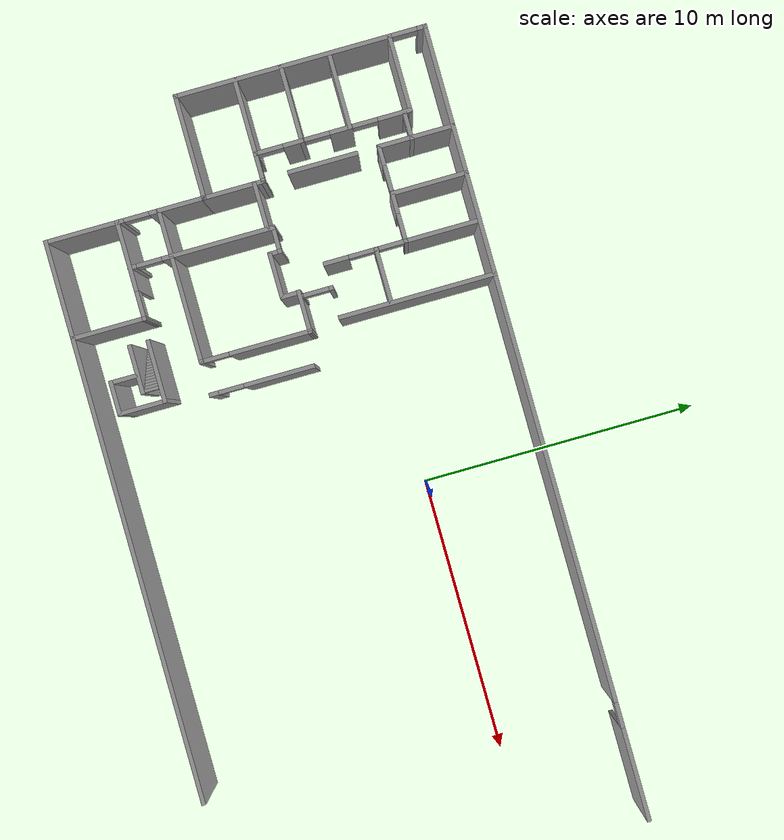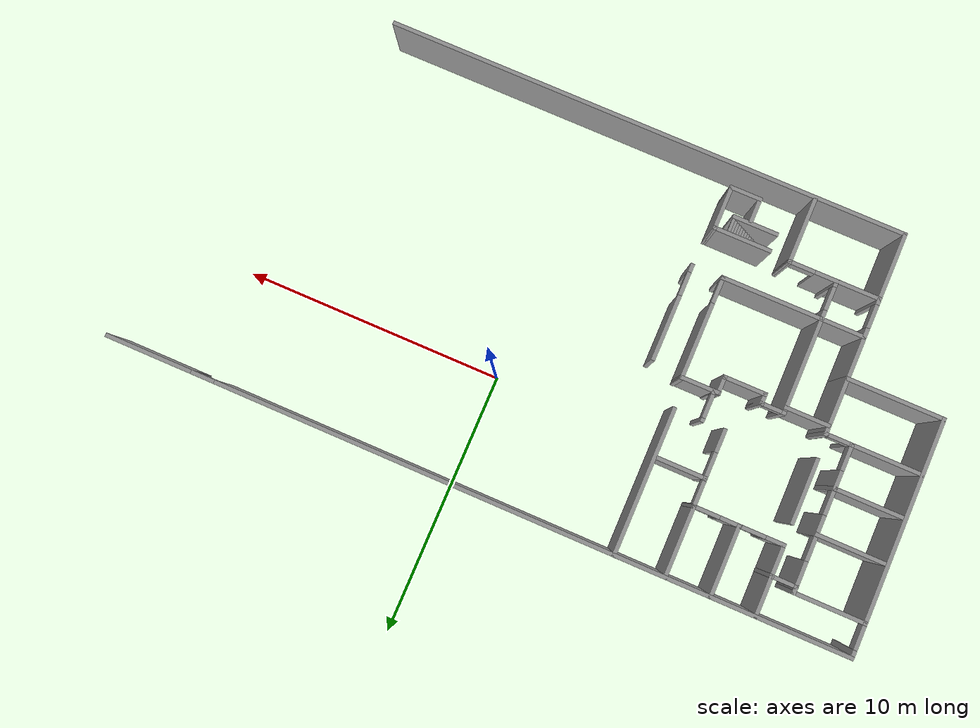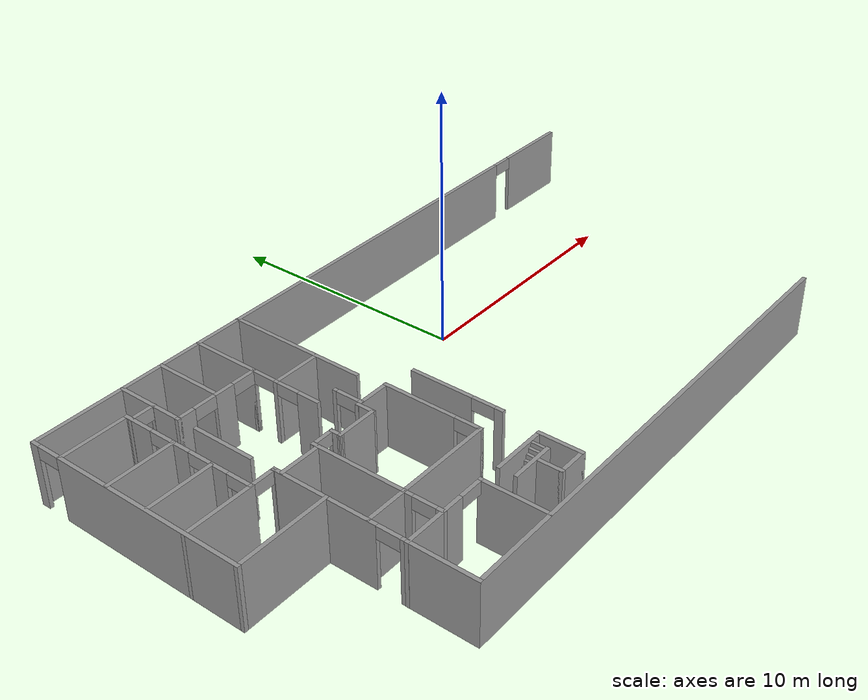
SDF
<sdf version="1.6">
 <model name="deh_f1">
  <pose>-0.995568 -3.05257 0 0 -0 0</pose>
  <link name="Stairs_0">
   <visual name="Stairs_0_Visual_0">
    <pose>-6.2314 -5.10974 0.083333 0 -0 1.5708</pose>
    <geometry><box><size>0.49 0.113139 0.166667</size></box></geometry>
    <material>
     <script><uri>file://media/materials/scripts/gazebo.material</uri><name>Gazebo/Grey</name></script>
     <ambient>1 1 1 1</ambient>
    </material>
   </visual>
   <collision name="Stairs_0_Collision_0">
    <geometry><box><size>0.49 0.113139 0.166667</size></box></geometry>
    <pose>-6.2314 -5.10974 0.083333 0 -0 1.5708</pose>
   </collision>
   <visual name="Stairs_0_Visual_1">
    <pose>-6.11826 -5.10974 0.25 0 -0 1.5708</pose>
    <geometry><box><size>0.49 0.113139 0.166667</size></box></geometry>
    <material>
     <script><uri>file://media/materials/scripts/gazebo.material</uri><name>Gazebo/Grey</name></script>
     <ambient>1 1 1 1</ambient>
    </material>
   </visual>
   <collision name="Stairs_0_Collision_1">
    <geometry><box><size>0.49 0.113139 0.166667</size></box></geometry>
    <pose>-6.11826 -5.10974 0.25 0 -0 1.5708</pose>
   </collision>
   <visual name="Stairs_0_Visual_2">
    <pose>-6.00512 -5.10974 0.416667 0 -0 1.5708</pose>
    <geometry><box><size>0.49 0.113139 0.166667</size></box></geometry>
    <material>
     <script><uri>file://media/materials/scripts/gazebo.material</uri><name>Gazebo/Grey</name></script>
     <ambient>1 1 1 1</ambient>
    </material>
   </visual>
   <collision name="Stairs_0_Collision_2">
    <geometry><box><size>0.49 0.113139 0.166667</size></box></geometry>
    <pose>-6.00512 -5.10974 0.416667 0 -0 1.5708</pose>
   </collision>
   <visual name="Stairs_0_Visual_3">
    <pose>-5.89198 -5.10974 0.583333 0 -0 1.5708</pose>
    <geometry><box><size>0.49 0.113139 0.166667</size></box></geometry>
    <material>
     <script><uri>file://media/materials/scripts/gazebo.material</uri><name>Gazebo/Grey</name></script>
     <ambient>1 1 1 1</ambient>
    </material>
   </visual>
   <collision name="Stairs_0_Collision_3">
    <geometry><box><size>0.49 0.113139 0.166667</size></box></geometry>
    <pose>-5.89198 -5.10974 0.583333 0 -0 1.5708</pose>
   </collision>
   <visual name="Stairs_0_Visual_4">
    <pose>-5.77884 -5.10974 0.75 0 -0 1.5708</pose>
    <geometry><box><size>0.49 0.113139 0.166667</size></box></geometry>
    <material>
     <script><uri>file://media/materials/scripts/gazebo.material</uri><name>Gazebo/Grey</name></script>
     <ambient>1 1 1 1</ambient>
    </material>
   </visual>
   <collision name="Stairs_0_Collision_4">
    <geometry><box><size>0.49 0.113139 0.166667</size></box></geometry>
    <pose>-5.77884 -5.10974 0.75 0 -0 1.5708</pose>
   </collision>
   <visual name="Stairs_0_Visual_5">
    <pose>-5.66571 -5.10974 0.916667 0 -0 1.5708</pose>
    <geometry><box><size>0.49 0.113139 0.166667</size></box></geometry>
    <material>
     <script><uri>file://media/materials/scripts/gazebo.material</uri><name>Gazebo/Grey</name></script>
     <ambient>1 1 1 1</ambient>
    </material>
   </visual>
   <collision name="Stairs_0_Collision_5">
    <geometry><box><size>0.49 0.113139 0.166667</size></box></geometry>
    <pose>-5.66571 -5.10974 0.916667 0 -0 1.5708</pose>
   </collision>
   <visual name="Stairs_0_Visual_6">
    <pose>-5.55257 -5.10974 1.08333 0 -0 1.5708</pose>
    <geometry><box><size>0.49 0.113139 0.166667</size></box></geometry>
    <material>
     <script><uri>file://media/materials/scripts/gazebo.material</uri><name>Gazebo/Grey</name></script>
     <ambient>1 1 1 1</ambient>
    </material>
   </visual>
   <collision name="Stairs_0_Collision_6">
    <geometry><box><size>0.49 0.113139 0.166667</size></box></geometry>
    <pose>-5.55257 -5.10974 1.08333 0 -0 1.5708</pose>
   </collision>
   <visual name="Stairs_0_Visual_7">
    <pose>-5.43943 -5.10974 1.25 0 -0 1.5708</pose>
    <geometry><box><size>0.49 0.113139 0.166667</size></box></geometry>
    <material>
     <script><uri>file://media/materials/scripts/gazebo.material</uri><name>Gazebo/Grey</name></script>
     <ambient>1 1 1 1</ambient>
    </material>
   </visual>
   <collision name="Stairs_0_Collision_7">
    <geometry><box><size>0.49 0.113139 0.166667</size></box></geometry>
    <pose>-5.43943 -5.10974 1.25 0 -0 1.5708</pose>
   </collision>
   <visual name="Stairs_0_Visual_8">
    <pose>-5.32629 -5.10974 1.41667 0 -0 1.5708</pose>
    <geometry><box><size>0.49 0.113139 0.166667</size></box></geometry>
    <material>
     <script><uri>file://media/materials/scripts/gazebo.material</uri><name>Gazebo/Grey</name></script>
     <ambient>1 1 1 1</ambient>
    </material>
   </visual>
   <collision name="Stairs_0_Collision_8">
    <geometry><box><size>0.49 0.113139 0.166667</size></box></geometry>
    <pose>-5.32629 -5.10974 1.41667 0 -0 1.5708</pose>
   </collision>
   <visual name="Stairs_0_Visual_9">
    <pose>-5.21315 -5.10974 1.58333 0 -0 1.5708</pose>
    <geometry><box><size>0.49 0.113139 0.166667</size></box></geometry>
    <material>
     <script><uri>file://media/materials/scripts/gazebo.material</uri><name>Gazebo/Grey</name></script>
     <ambient>1 1 1 1</ambient>
    </material>
   </visual>
   <collision name="Stairs_0_Collision_9">
    <geometry><box><size>0.49 0.113139 0.166667</size></box></geometry>
    <pose>-5.21315 -5.10974 1.58333 0 -0 1.5708</pose>
   </collision>
   <visual name="Stairs_0_Visual_10">
    <pose>-5.10001 -5.10974 1.75 0 -0 1.5708</pose>
    <geometry><box><size>0.49 0.113139 0.166667</size></box></geometry>
    <material>
     <script><uri>file://media/materials/scripts/gazebo.material</uri><name>Gazebo/Grey</name></script>
     <ambient>1 1 1 1</ambient>
    </material>
   </visual>
   <collision name="Stairs_0_Collision_10">
    <geometry><box><size>0.49 0.113139 0.166667</size></box></geometry>
    <pose>-5.10001 -5.10974 1.75 0 -0 1.5708</pose>
   </collision>
   <visual name="Stairs_0_Visual_11">
    <pose>-4.98687 -5.10974 1.91667 0 -0 1.5708</pose>
    <geometry><box><size>0.49 0.113139 0.166667</size></box></geometry>
    <material>
     <script><uri>file://media/materials/scripts/gazebo.material</uri><name>Gazebo/Grey</name></script>
     <ambient>1 1 1 1</ambient>
    </material>
   </visual>
   <collision name="Stairs_0_Collision_11">
    <geometry><box><size>0.49 0.113139 0.166667</size></box></geometry>
    <pose>-4.98687 -5.10974 1.91667 0 -0 1.5708</pose>
   </collision>
   <visual name="Stairs_0_Visual_12">
    <pose>-4.87373 -5.10974 2.08333 0 -0 1.5708</pose>
    <geometry><box><size>0.49 0.113139 0.166667</size></box></geometry>
    <material>
     <script><uri>file://media/materials/scripts/gazebo.material</uri><name>Gazebo/Grey</name></script>
     <ambient>1 1 1 1</ambient>
    </material>
   </visual>
   <collision name="Stairs_0_Collision_12">
    <geometry><box><size>0.49 0.113139 0.166667</size></box></geometry>
    <pose>-4.87373 -5.10974 2.08333 0 -0 1.5708</pose>
   </collision>
   <visual name="Stairs_0_Visual_13">
    <pose>-4.76059 -5.10974 2.25 0 -0 1.5708</pose>
    <geometry><box><size>0.49 0.113139 0.166667</size></box></geometry>
    <material>
     <script><uri>file://media/materials/scripts/gazebo.material</uri><name>Gazebo/Grey</name></script>
     <ambient>1 1 1 1</ambient>
    </material>
   </visual>
   <collision name="Stairs_0_Collision_13">
    <geometry><box><size>0.49 0.113139 0.166667</size></box></geometry>
    <pose>-4.76059 -5.10974 2.25 0 -0 1.5708</pose>
   </collision>
   <visual name="Stairs_0_Visual_14">
    <pose>-4.64745 -5.10974 2.41667 0 -0 1.5708</pose>
    <geometry><box><size>0.49 0.113139 0.166667</size></box></geometry>
    <material>
     <script><uri>file://media/materials/scripts/gazebo.material</uri><name>Gazebo/Grey</name></script>
     <ambient>1 1 1 1</ambient>
    </material>
   </visual>
   <collision name="Stairs_0_Collision_14">
    <geometry><box><size>0.49 0.113139 0.166667</size></box></geometry>
    <pose>-4.64745 -5.10974 2.41667 0 -0 1.5708</pose>
   </collision>
  </link>
  <link name="Wall_0">
   <collision name="Wall_0_Collision">
    <geometry><box><size>20 0.15 2.5</size></box></geometry>
    <pose>0 0 1.25 0 -0 0</pose>
   </collision>
   <visual name="Wall_0_Visual">
    <pose>0 0 1.25 0 -0 0</pose>
    <geometry><box><size>20 0.15 2.5</size></box></geometry>
    <material>
     <script><uri>file://media/materials/scripts/gazebo.material</uri><name>Gazebo/Grey</name></script>
     <ambient>1 1 1 1</ambient>
    </material>
   </visual>
   <pose>-0.526964 -7.22647 0 0 -0 0</pose>
  </link>
  <link name="Wall_101">
   <collision name="Wall_101_Collision">
    <geometry><box><size>5.6204 0.15 2.5</size></box></geometry>
    <pose>0 0 1.25 0 -0 0</pose>
   </collision>
   <visual name="Wall_101_Visual">
    <pose>0 0 1.25 0 -0 0</pose>
    <geometry><box><size>5.6204 0.15 2.5</size></box></geometry>
    <material>
     <script><uri>file://media/materials/scripts/gazebo.material</uri><name>Gazebo/Grey</name></script>
     <ambient>1 1 1 1</ambient>
    </material>
   </visual>
   <pose>-5.26917 4.49123 0 0 -0 1.57128</pose>
  </link>
  <link name="Wall_103">
   <collision name="Wall_103_Collision">
    <geometry><box><size>2 0.15 2.5</size></box></geometry>
    <pose>0 0 1.25 0 -0 0</pose>
   </collision>
   <visual name="Wall_103_Visual">
    <pose>0 0 1.25 0 -0 0</pose>
    <geometry><box><size>2 0.15 2.5</size></box></geometry>
    <material>
     <script><uri>file://media/materials/scripts/gazebo.material</uri><name>Gazebo/Grey</name></script>
     <ambient>1 1 1 1</ambient>
    </material>
   </visual>
   <pose>-6.238 3.5569 0 0 -0 0</pose>
  </link>
  <link name="Wall_105">
   <pose>-10.9717 5.7489 0 0 -0 3.14159</pose>
   <visual name="Wall_105_Visual_0">
    <pose>-0.453629 0 1.25 0 -0 0</pose>
    <geometry><box><size>0.165238 0.15 2.5</size></box></geometry>
    <material>
     <script><uri>file://media/materials/scripts/gazebo.material</uri><name>Gazebo/Grey</name></script>
     <ambient>1 1 1 1</ambient>
    </material>
   </visual>
   <collision name="Wall_105_Collision_0">
    <geometry><box><size>0.165238 0.15 2.5</size></box></geometry>
    <pose>-0.453629 0 1.25 0 -0 0</pose>
   </collision>
   <visual name="Wall_105_Visual_1">
    <pose>0.457005 0 1.25 0 -0 0</pose>
    <geometry><box><size>0.158486 0.15 2.5</size></box></geometry>
    <material>
     <script><uri>file://media/materials/scripts/gazebo.material</uri><name>Gazebo/Grey</name></script>
     <ambient>1 1 1 1</ambient>
    </material>
   </visual>
   <collision name="Wall_105_Collision_1">
    <geometry><box><size>0.158486 0.15 2.5</size></box></geometry>
    <pose>0.457005 0 1.25 0 -0 0</pose>
   </collision>
   <visual name="Wall_105_Visual_2">
    <pose>0.003376 0 2.25 0 -0 0</pose>
    <geometry><box><size>0.748771 0.15 0.5</size></box></geometry>
    <material>
     <script><uri>file://media/materials/scripts/gazebo.material</uri><name>Gazebo/Grey</name></script>
     <ambient>1 1 1 1</ambient>
    </material>
   </visual>
   <collision name="Wall_105_Collision_2">
    <geometry><box><size>0.748771 0.15 0.5</size></box></geometry>
    <pose>0.003376 0 2.25 0 -0 0</pose>
   </collision>
  </link>
  <link name="Wall_130">
   <pose>-3.91846 -1.4072 0 0 0 -1.5708</pose>
   <visual name="Wall_130_Visual_0">
    <pose>-0.617959 0 1.25 0 -0 0</pose>
    <geometry><box><size>2.51408 0.15 2.5</size></box></geometry>
    <material>
     <script><uri>file://media/materials/scripts/gazebo.material</uri><name>Gazebo/Grey</name></script>
     <ambient>1 1 1 1</ambient>
    </material>
   </visual>
   <collision name="Wall_130_Collision_0">
    <geometry><box><size>2.51408 0.15 2.5</size></box></geometry>
    <pose>-0.617959 0 1.25 0 -0 0</pose>
   </collision>
   <visual name="Wall_130_Visual_1">
    <pose>1.70704 0 1.25 0 -0 0</pose>
    <geometry><box><size>0.335919 0.15 2.5</size></box></geometry>
    <material>
     <script><uri>file://media/materials/scripts/gazebo.material</uri><name>Gazebo/Grey</name></script>
     <ambient>1 1 1 1</ambient>
    </material>
   </visual>
   <collision name="Wall_130_Collision_1">
    <geometry><box><size>0.335919 0.15 2.5</size></box></geometry>
    <pose>1.70704 0 1.25 0 -0 0</pose>
   </collision>
   <visual name="Wall_130_Visual_2">
    <pose>1.08908 0 2.25 0 -0 0</pose>
    <geometry><box><size>0.9 0.15 0.5</size></box></geometry>
    <material>
     <script><uri>file://media/materials/scripts/gazebo.material</uri><name>Gazebo/Grey</name></script>
     <ambient>1 1 1 1</ambient>
    </material>
   </visual>
   <collision name="Wall_130_Collision_2">
    <geometry><box><size>0.9 0.15 0.5</size></box></geometry>
    <pose>1.08908 0 2.25 0 -0 0</pose>
   </collision>
  </link>
  <link name="Wall_19">
   <pose>-8.74893 -4.7004 0 0 -0 0.000997</pose>
   <visual name="Wall_19_Visual_0">
    <pose>-0.52084 0 1.25 0 -0 0</pose>
    <geometry><box><size>2.52103 0.15 2.5</size></box></geometry>
    <material>
     <script><uri>file://media/materials/scripts/gazebo.material</uri><name>Gazebo/Grey</name></script>
     <ambient>1 1 1 1</ambient>
    </material>
   </visual>
   <collision name="Wall_19_Collision_0">
    <geometry><box><size>2.52103 0.15 2.5</size></box></geometry>
    <pose>-0.52084 0 1.25 0 -0 0</pose>
   </collision>
   <visual name="Wall_19_Visual_1">
    <pose>1.71051 0 1.25 0 -0 0</pose>
    <geometry><box><size>0.141681 0.15 2.5</size></box></geometry>
    <material>
     <script><uri>file://media/materials/scripts/gazebo.material</uri><name>Gazebo/Grey</name></script>
     <ambient>1 1 1 1</ambient>
    </material>
   </visual>
   <collision name="Wall_19_Collision_1">
    <geometry><box><size>0.141681 0.15 2.5</size></box></geometry>
    <pose>1.71051 0 1.25 0 -0 0</pose>
   </collision>
   <visual name="Wall_19_Visual_2">
    <pose>1.18967 0 2.25 0 -0 0</pose>
    <geometry><box><size>0.9 0.15 0.5</size></box></geometry>
    <material>
     <script><uri>file://media/materials/scripts/gazebo.material</uri><name>Gazebo/Grey</name></script>
     <ambient>1 1 1 1</ambient>
    </material>
   </visual>
   <collision name="Wall_19_Collision_2">
    <geometry><box><size>0.9 0.15 0.5</size></box></geometry>
    <pose>1.18967 0 2.25 0 -0 0</pose>
   </collision>
  </link>
  <link name="Wall_2">
   <pose>-10.452 -4.42647 0 0 -0 1.5708</pose>
   <visual name="Wall_2_Visual_0">
    <pose>-1.46188 0 1.25 0 -0 0</pose>
    <geometry><box><size>2.82623 0.15 2.5</size></box></geometry>
    <material>
     <script><uri>file://media/materials/scripts/gazebo.material</uri><name>Gazebo/Grey</name></script>
     <ambient>1 1 1 1</ambient>
    </material>
   </visual>
   <collision name="Wall_2_Collision_0">
    <geometry><box><size>2.82623 0.15 2.5</size></box></geometry>
    <pose>-1.46188 0 1.25 0 -0 0</pose>
   </collision>
   <visual name="Wall_2_Visual_1">
    <pose>1.86312 0 1.25 0 -0 0</pose>
    <geometry><box><size>2.02377 0.15 2.5</size></box></geometry>
    <material>
     <script><uri>file://media/materials/scripts/gazebo.material</uri><name>Gazebo/Grey</name></script>
     <ambient>1 1 1 1</ambient>
    </material>
   </visual>
   <collision name="Wall_2_Collision_1">
    <geometry><box><size>2.02377 0.15 2.5</size></box></geometry>
    <pose>1.86312 0 1.25 0 -0 0</pose>
   </collision>
   <visual name="Wall_2_Visual_2">
    <pose>0.401232 0 2.25 0 -0 0</pose>
    <geometry><box><size>0.9 0.15 0.5</size></box></geometry>
    <material>
     <script><uri>file://media/materials/scripts/gazebo.material</uri><name>Gazebo/Grey</name></script>
     <ambient>1 1 1 1</ambient>
    </material>
   </visual>
   <collision name="Wall_2_Collision_2">
    <geometry><box><size>0.9 0.15 0.5</size></box></geometry>
    <pose>0.401232 0 2.25 0 -0 0</pose>
   </collision>
  </link>
  <link name="Wall_20">
   <collision name="Wall_20_Collision">
    <geometry><box><size>2.6716 0.15 2.5</size></box></geometry>
    <pose>0 0 1.25 0 -0 0</pose>
   </collision>
   <visual name="Wall_20_Visual">
    <pose>0 0 1.25 0 -0 0</pose>
    <geometry><box><size>2.6716 0.15 2.5</size></box></geometry>
    <material>
     <script><uri>file://media/materials/scripts/gazebo.material</uri><name>Gazebo/Grey</name></script>
     <ambient>1 1 1 1</ambient>
    </material>
   </visual>
   <pose>-7.04302 -5.9595 0 0 0 -1.57115</pose>
  </link>
  <link name="Wall_22">
   <collision name="Wall_22_Collision">
    <geometry><box><size>5.5 0.15 2.5</size></box></geometry>
    <pose>0 0 1.25 0 -0 0</pose>
   </collision>
   <visual name="Wall_22_Visual">
    <pose>0 0 1.25 0 -0 0</pose>
    <geometry><box><size>5.5 0.15 2.5</size></box></geometry>
    <material>
     <script><uri>file://media/materials/scripts/gazebo.material</uri><name>Gazebo/Grey</name></script>
     <ambient>1 1 1 1</ambient>
    </material>
   </visual>
   <pose>-7.76729 -3.22957 0 0 -0 0</pose>
  </link>
  <link name="Wall_26">
   <pose>-8.83797 -3.96974 0 0 -0 1.5708</pose>
   <visual name="Wall_26_Visual_0">
    <pose>-0.6575 0 1.25 0 -0 0</pose>
    <geometry><box><size>0.305 0.15 2.5</size></box></geometry>
    <material>
     <script><uri>file://media/materials/scripts/gazebo.material</uri><name>Gazebo/Grey</name></script>
     <ambient>1 1 1 1</ambient>
    </material>
   </visual>
   <collision name="Wall_26_Collision_0">
    <geometry><box><size>0.305 0.15 2.5</size></box></geometry>
    <pose>-0.6575 0 1.25 0 -0 0</pose>
   </collision>
   <visual name="Wall_26_Visual_1">
    <pose>0.6025 0 1.25 0 -0 0</pose>
    <geometry><box><size>0.415 0.15 2.5</size></box></geometry>
    <material>
     <script><uri>file://media/materials/scripts/gazebo.material</uri><name>Gazebo/Grey</name></script>
     <ambient>1 1 1 1</ambient>
    </material>
   </visual>
   <collision name="Wall_26_Collision_1">
    <geometry><box><size>0.415 0.15 2.5</size></box></geometry>
    <pose>0.6025 0 1.25 0 -0 0</pose>
   </collision>
   <visual name="Wall_26_Visual_2">
    <pose>-0.055 0 2.25 0 -0 0</pose>
    <geometry><box><size>0.9 0.15 0.5</size></box></geometry>
    <material>
     <script><uri>file://media/materials/scripts/gazebo.material</uri><name>Gazebo/Grey</name></script>
     <ambient>1 1 1 1</ambient>
    </material>
   </visual>
   <collision name="Wall_26_Collision_2">
    <geometry><box><size>0.9 0.15 0.5</size></box></geometry>
    <pose>-0.055 0 2.25 0 -0 0</pose>
   </collision>
  </link>
  <link name="Wall_28">
   <collision name="Wall_28_Collision">
    <geometry><box><size>2.25 0.15 2.5</size></box></geometry>
    <pose>0 0 1.25 0 -0 0</pose>
   </collision>
   <visual name="Wall_28_Visual">
    <pose>0 0 1.25 0 -0 0</pose>
    <geometry><box><size>2.25 0.15 2.5</size></box></geometry>
    <material>
     <script><uri>file://media/materials/scripts/gazebo.material</uri><name>Gazebo/Grey</name></script>
     <ambient>1 1 1 1</ambient>
    </material>
   </visual>
   <pose>-5.18797 -4.78474 0 0 -0 0</pose>
  </link>
  <link name="Wall_29">
   <collision name="Wall_29_Collision">
    <geometry><box><size>1.75 0.15 2.5</size></box></geometry>
    <pose>0 0 1.25 0 -0 0</pose>
   </collision>
   <visual name="Wall_29_Visual">
    <pose>0 0 1.25 0 -0 0</pose>
    <geometry><box><size>1.75 0.15 2.5</size></box></geometry>
    <material>
     <script><uri>file://media/materials/scripts/gazebo.material</uri><name>Gazebo/Grey</name></script>
     <ambient>1 1 1 1</ambient>
    </material>
   </visual>
   <pose>-4.13797 -5.58474 0 0 0 -1.5708</pose>
  </link>
  <link name="Wall_3">
   <collision name="Wall_3_Collision">
    <geometry><box><size>3.75 0.15 2.5</size></box></geometry>
    <pose>0 0 1.25 0 -0 0</pose>
   </collision>
   <visual name="Wall_3_Visual">
    <pose>0 0 1.25 0 -0 0</pose>
    <geometry><box><size>3.75 0.15 2.5</size></box></geometry>
    <material>
     <script><uri>file://media/materials/scripts/gazebo.material</uri><name>Gazebo/Grey</name></script>
     <ambient>1 1 1 1</ambient>
    </material>
   </visual>
   <pose>-12.252 -1.62647 0 0 -0 3.14159</pose>
  </link>
  <link name="Wall_30">
   <collision name="Wall_30_Collision">
    <geometry><box><size>1.25 0.15 2.5</size></box></geometry>
    <pose>0 0 1.25 0 -0 0</pose>
   </collision>
   <visual name="Wall_30_Visual">
    <pose>0 0 1.25 0 -0 0</pose>
    <geometry><box><size>1.25 0.15 2.5</size></box></geometry>
    <material>
     <script><uri>file://media/materials/scripts/gazebo.material</uri><name>Gazebo/Grey</name></script>
     <ambient>1 1 1 1</ambient>
    </material>
   </visual>
   <pose>-4.68797 -6.38474 0 0 -0 3.14159</pose>
  </link>
  <link name="Wall_34">
   <collision name="Wall_34_Collision">
    <geometry><box><size>1.75 0.15 2.5</size></box></geometry>
    <pose>0 0 1.25 0 -0 0</pose>
   </collision>
   <visual name="Wall_34_Visual">
    <pose>0 0 1.25 0 -0 0</pose>
    <geometry><box><size>1.75 0.15 2.5</size></box></geometry>
    <material>
     <script><uri>file://media/materials/scripts/gazebo.material</uri><name>Gazebo/Grey</name></script>
     <ambient>1 1 1 1</ambient>
    </material>
   </visual>
   <pose>-5.43797 -5.43474 0 0 -0 3.14159</pose>
  </link>
  <link name="Wall_37">
   <collision name="Wall_37_Collision">
    <geometry><box><size>1 0.15 2.5</size></box></geometry>
    <pose>0 0 1.25 0 -0 0</pose>
   </collision>
   <visual name="Wall_37_Visual">
    <pose>0 0 1.25 0 -0 0</pose>
    <geometry><box><size>1 0.15 2.5</size></box></geometry>
    <material>
     <script><uri>file://media/materials/scripts/gazebo.material</uri><name>Gazebo/Grey</name></script>
     <ambient>1 1 1 1</ambient>
    </material>
   </visual>
   <pose>-5.23797 -5.95974 0 0 -0 1.5708</pose>
  </link>
  <link name="Wall_39">
   <pose>-5.09229 -1.29796 0 0 -0 1.5708</pose>
   <visual name="Wall_39_Visual_0">
    <pose>-1.92561 0 1.25 0 -0 0</pose>
    <geometry><box><size>0.162001 0.15 2.5</size></box></geometry>
    <material>
     <script><uri>file://media/materials/scripts/gazebo.material</uri><name>Gazebo/Grey</name></script>
     <ambient>1 1 1 1</ambient>
    </material>
   </visual>
   <collision name="Wall_39_Collision_0">
    <geometry><box><size>0.162001 0.15 2.5</size></box></geometry>
    <pose>-1.92561 0 1.25 0 -0 0</pose>
   </collision>
   <visual name="Wall_39_Visual_1">
    <pose>0.531001 0 1.25 0 -0 0</pose>
    <geometry><box><size>2.95122 0.15 2.5</size></box></geometry>
    <material>
     <script><uri>file://media/materials/scripts/gazebo.material</uri><name>Gazebo/Grey</name></script>
     <ambient>1 1 1 1</ambient>
    </material>
   </visual>
   <collision name="Wall_39_Collision_1">
    <geometry><box><size>2.95122 0.15 2.5</size></box></geometry>
    <pose>0.531001 0 1.25 0 -0 0</pose>
   </collision>
   <visual name="Wall_39_Visual_2">
    <pose>-1.39461 0 2.25 0 -0 0</pose>
    <geometry><box><size>0.9 0.15 0.5</size></box></geometry>
    <material>
     <script><uri>file://media/materials/scripts/gazebo.material</uri><name>Gazebo/Grey</name></script>
     <ambient>1 1 1 1</ambient>
    </material>
   </visual>
   <collision name="Wall_39_Collision_2">
    <geometry><box><size>0.9 0.15 0.5</size></box></geometry>
    <pose>-1.39461 0 2.25 0 -0 0</pose>
   </collision>
  </link>
  <link name="Wall_4">
   <pose>-14.052 2.79853 0 0 -0 1.5708</pose>
   <visual name="Wall_4_Visual_0">
    <pose>-0.630476 0 1.25 0 -0 0</pose>
    <geometry><box><size>7.73905 0.15 2.5</size></box></geometry>
    <material>
     <script><uri>file://media/materials/scripts/gazebo.material</uri><name>Gazebo/Grey</name></script>
     <ambient>1 1 1 1</ambient>
    </material>
   </visual>
   <collision name="Wall_4_Collision_0">
    <geometry><box><size>7.73905 0.15 2.5</size></box></geometry>
    <pose>-0.630476 0 1.25 0 -0 0</pose>
   </collision>
   <visual name="Wall_4_Visual_1">
    <pose>4.31952 0 1.25 0 -0 0</pose>
    <geometry><box><size>0.360951 0.15 2.5</size></box></geometry>
    <material>
     <script><uri>file://media/materials/scripts/gazebo.material</uri><name>Gazebo/Grey</name></script>
     <ambient>1 1 1 1</ambient>
    </material>
   </visual>
   <collision name="Wall_4_Collision_1">
    <geometry><box><size>0.360951 0.15 2.5</size></box></geometry>
    <pose>4.31952 0 1.25 0 -0 0</pose>
   </collision>
   <visual name="Wall_4_Visual_2">
    <pose>3.68905 0 2.25 0 -0 0</pose>
    <geometry><box><size>0.9 0.15 0.5</size></box></geometry>
    <material>
     <script><uri>file://media/materials/scripts/gazebo.material</uri><name>Gazebo/Grey</name></script>
     <ambient>1 1 1 1</ambient>
    </material>
   </visual>
   <collision name="Wall_4_Collision_2">
    <geometry><box><size>0.9 0.15 0.5</size></box></geometry>
    <pose>3.68905 0 2.25 0 -0 0</pose>
   </collision>
  </link>
  <link name="Wall_40">
   <collision name="Wall_40_Collision">
    <geometry><box><size>1.53968 0.15 2.5</size></box></geometry>
    <pose>0 0 1.25 0 -0 0</pose>
   </collision>
   <visual name="Wall_40_Visual">
    <pose>0 0 1.25 0 -0 0</pose>
    <geometry><box><size>1.53968 0.15 2.5</size></box></geometry>
    <material>
     <script><uri>file://media/materials/scripts/gazebo.material</uri><name>Gazebo/Grey</name></script>
     <ambient>1 1 1 1</ambient>
    </material>
   </visual>
   <pose>-5.78712 0.618344 0 0 0 -3.1386</pose>
  </link>
  <link name="Wall_44">
   <collision name="Wall_44_Collision">
    <geometry><box><size>3.75 0.15 2.5</size></box></geometry>
    <pose>0 0 1.25 0 -0 0</pose>
   </collision>
   <visual name="Wall_44_Visual">
    <pose>0 0 1.25 0 -0 0</pose>
    <geometry><box><size>3.75 0.15 2.5</size></box></geometry>
    <material>
     <script><uri>file://media/materials/scripts/gazebo.material</uri><name>Gazebo/Grey</name></script>
     <ambient>1 1 1 1</ambient>
    </material>
   </visual>
   <pose>-8.83797 -1.43474 0 0 -0 1.5708</pose>
  </link>
  <link name="Wall_46">
   <collision name="Wall_46_Collision">
    <geometry><box><size>2.25 0.15 2.5</size></box></geometry>
    <pose>0 0 1.25 0 -0 0</pose>
   </collision>
   <visual name="Wall_46_Visual">
    <pose>0 0 1.25 0 -0 0</pose>
    <geometry><box><size>2.25 0.15 2.5</size></box></geometry>
    <material>
     <script><uri>file://media/materials/scripts/gazebo.material</uri><name>Gazebo/Grey</name></script>
     <ambient>1 1 1 1</ambient>
    </material>
   </visual>
   <pose>-10.452 -0.576473 0 0 -0 1.5708</pose>
  </link>
  <link name="Wall_48">
   <collision name="Wall_48_Collision">
    <geometry><box><size>1.73003 0.15 2.5</size></box></geometry>
    <pose>0 0 1.25 0 -0 0</pose>
   </collision>
   <visual name="Wall_48_Visual">
    <pose>0 0 1.25 0 -0 0</pose>
    <geometry><box><size>1.73003 0.15 2.5</size></box></geometry>
    <material>
     <script><uri>file://media/materials/scripts/gazebo.material</uri><name>Gazebo/Grey</name></script>
     <ambient>1 1 1 1</ambient>
    </material>
   </visual>
   <pose>-9.63041 0.166163 0 0 -0 0</pose>
  </link>
  <link name="Wall_5">
   <pose>-0.001964 7.22353 0 0 -0 0</pose>
   <visual name="Wall_5_Visual_0">
    <pose>-2.10672 0 1.25 0 -0 0</pose>
    <geometry><box><size>24.0366 0.15 2.5</size></box></geometry>
    <material>
     <script><uri>file://media/materials/scripts/gazebo.material</uri><name>Gazebo/Grey</name></script>
     <ambient>1 1 1 1</ambient>
    </material>
   </visual>
   <collision name="Wall_5_Collision_0">
    <geometry><box><size>24.0366 0.15 2.5</size></box></geometry>
    <pose>-2.10672 0 1.25 0 -0 0</pose>
   </collision>
   <visual name="Wall_5_Visual_1">
    <pose>12.4683 0 1.25 0 -0 0</pose>
    <geometry><box><size>3.31344 0.15 2.5</size></box></geometry>
    <material>
     <script><uri>file://media/materials/scripts/gazebo.material</uri><name>Gazebo/Grey</name></script>
     <ambient>1 1 1 1</ambient>
    </material>
   </visual>
   <collision name="Wall_5_Collision_1">
    <geometry><box><size>3.31344 0.15 2.5</size></box></geometry>
    <pose>12.4683 0 1.25 0 -0 0</pose>
   </collision>
   <visual name="Wall_5_Visual_2">
    <pose>10.3616 0 2.25 0 -0 0</pose>
    <geometry><box><size>0.9 0.15 0.5</size></box></geometry>
    <material>
     <script><uri>file://media/materials/scripts/gazebo.material</uri><name>Gazebo/Grey</name></script>
     <ambient>1 1 1 1</ambient>
    </material>
   </visual>
   <collision name="Wall_5_Collision_2">
    <geometry><box><size>0.9 0.15 0.5</size></box></geometry>
    <pose>10.3616 0 2.25 0 -0 0</pose>
   </collision>
  </link>
  <link name="Wall_60">
   <pose>-8.42135 0.36771 0 0 -0 0</pose>
   <visual name="Wall_60_Visual_0">
    <pose>-0.418626 0 1.25 0 -0 0</pose>
    <geometry><box><size>0.162748 0.15 2.5</size></box></geometry>
    <material>
     <script><uri>file://media/materials/scripts/gazebo.material</uri><name>Gazebo/Grey</name></script>
     <ambient>1 1 1 1</ambient>
    </material>
   </visual>
   <collision name="Wall_60_Collision_0">
    <geometry><box><size>0.162748 0.15 2.5</size></box></geometry>
    <pose>-0.418626 0 1.25 0 -0 0</pose>
   </collision>
   <visual name="Wall_60_Visual_1">
    <pose>0.421733 0 1.25 0 -0 0</pose>
    <geometry><box><size>0.156534 0.15 2.5</size></box></geometry>
    <material>
     <script><uri>file://media/materials/scripts/gazebo.material</uri><name>Gazebo/Grey</name></script>
     <ambient>1 1 1 1</ambient>
    </material>
   </visual>
   <collision name="Wall_60_Collision_1">
    <geometry><box><size>0.156534 0.15 2.5</size></box></geometry>
    <pose>0.421733 0 1.25 0 -0 0</pose>
   </collision>
   <visual name="Wall_60_Visual_2">
    <pose>0.003107 0 2.25 0 -0 0</pose>
    <geometry><box><size>0.680718 0.15 0.5</size></box></geometry>
    <material>
     <script><uri>file://media/materials/scripts/gazebo.material</uri><name>Gazebo/Grey</name></script>
     <ambient>1 1 1 1</ambient>
    </material>
   </visual>
   <collision name="Wall_60_Collision_2">
    <geometry><box><size>0.680718 0.15 0.5</size></box></geometry>
    <pose>0.003107 0 2.25 0 -0 0</pose>
   </collision>
  </link>
  <link name="Wall_62">
   <collision name="Wall_62_Collision">
    <geometry><box><size>0.5 0.15 2.5</size></box></geometry>
    <pose>0 0 1.25 0 -0 0</pose>
   </collision>
   <visual name="Wall_62_Visual">
    <pose>0 0 1.25 0 -0 0</pose>
    <geometry><box><size>0.5 0.15 2.5</size></box></geometry>
    <material>
     <script><uri>file://media/materials/scripts/gazebo.material</uri><name>Gazebo/Grey</name></script>
     <ambient>1 1 1 1</ambient>
    </material>
   </visual>
   <pose>-7.99635 0.19271 0 0 0 -1.5708</pose>
  </link>
  <link name="Wall_64">
   <collision name="Wall_64_Collision">
    <geometry><box><size>0.745834 0.15 2.5</size></box></geometry>
    <pose>0 0 1.25 0 -0 0</pose>
   </collision>
   <visual name="Wall_64_Visual">
    <pose>0 0 1.25 0 -0 0</pose>
    <geometry><box><size>0.745834 0.15 2.5</size></box></geometry>
    <material>
     <script><uri>file://media/materials/scripts/gazebo.material</uri><name>Gazebo/Grey</name></script>
     <ambient>1 1 1 1</ambient>
    </material>
   </visual>
   <pose>-6.46874 0.318344 0 0 0 -1.5708</pose>
  </link>
  <link name="Wall_65">
   <collision name="Wall_65_Collision">
    <geometry><box><size>1.66439 0.15 2.5</size></box></geometry>
    <pose>0 0 1.25 0 -0 0</pose>
   </collision>
   <visual name="Wall_65_Visual">
    <pose>0 0 1.25 0 -0 0</pose>
    <geometry><box><size>1.66439 0.15 2.5</size></box></geometry>
    <material>
     <script><uri>file://media/materials/scripts/gazebo.material</uri><name>Gazebo/Grey</name></script>
     <ambient>1 1 1 1</ambient>
    </material>
   </visual>
   <pose>-7.23916 0.019069 0 0 0 -3.1398</pose>
  </link>
  <link name="Wall_67">
   <pose>-12.252 0.473528 0 0 -0 3.14159</pose>
   <visual name="Wall_67_Visual_0">
    <pose>-1.787 0 1.25 0 -0 0</pose>
    <geometry><box><size>0.176003 0.15 2.5</size></box></geometry>
    <material>
     <script><uri>file://media/materials/scripts/gazebo.material</uri><name>Gazebo/Grey</name></script>
     <ambient>1 1 1 1</ambient>
    </material>
   </visual>
   <collision name="Wall_67_Collision_0">
    <geometry><box><size>0.176003 0.15 2.5</size></box></geometry>
    <pose>-1.787 0 1.25 0 -0 0</pose>
   </collision>
   <visual name="Wall_67_Visual_1">
    <pose>0.483001 0 1.25 0 -0 0</pose>
    <geometry><box><size>2.784 0.15 2.5</size></box></geometry>
    <material>
     <script><uri>file://media/materials/scripts/gazebo.material</uri><name>Gazebo/Grey</name></script>
     <ambient>1 1 1 1</ambient>
    </material>
   </visual>
   <collision name="Wall_67_Collision_1">
    <geometry><box><size>2.784 0.15 2.5</size></box></geometry>
    <pose>0.483001 0 1.25 0 -0 0</pose>
   </collision>
   <visual name="Wall_67_Visual_2">
    <pose>-1.304 0 2.25 0 -0 0</pose>
    <geometry><box><size>0.79 0.15 0.5</size></box></geometry>
    <material>
     <script><uri>file://media/materials/scripts/gazebo.material</uri><name>Gazebo/Grey</name></script>
     <ambient>1 1 1 1</ambient>
    </material>
   </visual>
   <collision name="Wall_67_Collision_2">
    <geometry><box><size>0.79 0.15 0.5</size></box></geometry>
    <pose>-1.304 0 2.25 0 -0 0</pose>
   </collision>
  </link>
  <link name="Wall_69">
   <collision name="Wall_69_Collision">
    <geometry><box><size>2.75 0.15 2.5</size></box></geometry>
    <pose>0 0 1.25 0 -0 0</pose>
   </collision>
   <visual name="Wall_69_Visual">
    <pose>0 0 1.25 0 -0 0</pose>
    <geometry><box><size>2.75 0.15 2.5</size></box></geometry>
    <material>
     <script><uri>file://media/materials/scripts/gazebo.material</uri><name>Gazebo/Grey</name></script>
     <ambient>1 1 1 1</ambient>
    </material>
   </visual>
   <pose>-12.728 2.11286 0 0 -0 0</pose>
  </link>
  <link name="Wall_70">
   <pose>-11.428 1.31286 0 0 0 -1.5708</pose>
   <visual name="Wall_70_Visual_0">
    <pose>-0.502199 0 1.25 0 -0 0</pose>
    <geometry><box><size>0.745601 0.15 2.5</size></box></geometry>
    <material>
     <script><uri>file://media/materials/scripts/gazebo.material</uri><name>Gazebo/Grey</name></script>
     <ambient>1 1 1 1</ambient>
    </material>
   </visual>
   <collision name="Wall_70_Collision_0">
    <geometry><box><size>0.745601 0.15 2.5</size></box></geometry>
    <pose>-0.502199 0 1.25 0 -0 0</pose>
   </collision>
   <visual name="Wall_70_Visual_1">
    <pose>0.822801 0 1.25 0 -0 0</pose>
    <geometry><box><size>0.104399 0.15 2.5</size></box></geometry>
    <material>
     <script><uri>file://media/materials/scripts/gazebo.material</uri><name>Gazebo/Grey</name></script>
     <ambient>1 1 1 1</ambient>
    </material>
   </visual>
   <collision name="Wall_70_Collision_1">
    <geometry><box><size>0.104399 0.15 2.5</size></box></geometry>
    <pose>0.822801 0 1.25 0 -0 0</pose>
   </collision>
   <visual name="Wall_70_Visual_2">
    <pose>0.320601 0 2.25 0 -0 0</pose>
    <geometry><box><size>0.9 0.15 0.5</size></box></geometry>
    <material>
     <script><uri>file://media/materials/scripts/gazebo.material</uri><name>Gazebo/Grey</name></script>
     <ambient>1 1 1 1</ambient>
    </material>
   </visual>
   <collision name="Wall_70_Collision_2">
    <geometry><box><size>0.9 0.15 0.5</size></box></geometry>
    <pose>0.320601 0 2.25 0 -0 0</pose>
   </collision>
  </link>
  <link name="Wall_75">
   <collision name="Wall_75_Collision">
    <geometry><box><size>2.5 0.15 2.5</size></box></geometry>
    <pose>0 0 1.25 0 -0 0</pose>
   </collision>
   <visual name="Wall_75_Visual">
    <pose>0 0 1.25 0 -0 0</pose>
    <geometry><box><size>2.5 0.15 2.5</size></box></geometry>
    <material>
     <script><uri>file://media/materials/scripts/gazebo.material</uri><name>Gazebo/Grey</name></script>
     <ambient>1 1 1 1</ambient>
    </material>
   </visual>
   <pose>-10.5068 2.60474 0 0 0 -1.5708</pose>
  </link>
  <link name="Wall_77">
   <pose>-11.428 4.03786 0 0 -0 1.5708</pose>
   <visual name="Wall_77_Visual_0">
    <pose>-1.91892 0 1.25 0 -0 0</pose>
    <geometry><box><size>0.162152 0.15 2.5</size></box></geometry>
    <material>
     <script><uri>file://media/materials/scripts/gazebo.material</uri><name>Gazebo/Grey</name></script>
     <ambient>1 1 1 1</ambient>
    </material>
   </visual>
   <collision name="Wall_77_Collision_0">
    <geometry><box><size>0.162152 0.15 2.5</size></box></geometry>
    <pose>-1.91892 0 1.25 0 -0 0</pose>
   </collision>
   <visual name="Wall_77_Visual_1">
    <pose>-0.535139 0 1.25 0 -0 0</pose>
    <geometry><box><size>0.805417 0.15 2.5</size></box></geometry>
    <material>
     <script><uri>file://media/materials/scripts/gazebo.material</uri><name>Gazebo/Grey</name></script>
     <ambient>1 1 1 1</ambient>
    </material>
   </visual>
   <collision name="Wall_77_Collision_1">
    <geometry><box><size>0.805417 0.15 2.5</size></box></geometry>
    <pose>-0.535139 0 1.25 0 -0 0</pose>
   </collision>
   <visual name="Wall_77_Visual_2">
    <pose>1.38379 0 1.25 0 -0 0</pose>
    <geometry><box><size>1.23243 0.15 2.5</size></box></geometry>
    <material>
     <script><uri>file://media/materials/scripts/gazebo.material</uri><name>Gazebo/Grey</name></script>
     <ambient>1 1 1 1</ambient>
    </material>
   </visual>
   <collision name="Wall_77_Collision_2">
    <geometry><box><size>1.23243 0.15 2.5</size></box></geometry>
    <pose>1.38379 0 1.25 0 -0 0</pose>
   </collision>
   <visual name="Wall_77_Visual_3">
    <pose>-1.38785 0 2.25 0 -0 0</pose>
    <geometry><box><size>0.9 0.15 0.5</size></box></geometry>
    <material>
     <script><uri>file://media/materials/scripts/gazebo.material</uri><name>Gazebo/Grey</name></script>
     <ambient>1 1 1 1</ambient>
    </material>
   </visual>
   <collision name="Wall_77_Collision_3">
    <geometry><box><size>0.9 0.15 0.5</size></box></geometry>
    <pose>-1.38785 0 2.25 0 -0 0</pose>
   </collision>
   <visual name="Wall_77_Visual_4">
    <pose>0.317569 0 2.25 0 -0 0</pose>
    <geometry><box><size>0.9 0.15 0.5</size></box></geometry>
    <material>
     <script><uri>file://media/materials/scripts/gazebo.material</uri><name>Gazebo/Grey</name></script>
     <ambient>1 1 1 1</ambient>
    </material>
   </visual>
   <collision name="Wall_77_Collision_4">
    <geometry><box><size>0.9 0.15 0.5</size></box></geometry>
    <pose>0.317569 0 2.25 0 -0 0</pose>
   </collision>
  </link>
  <link name="Wall_78">
   <collision name="Wall_78_Collision">
    <geometry><box><size>2.75 0.15 2.5</size></box></geometry>
    <pose>0 0 1.25 0 -0 0</pose>
   </collision>
   <visual name="Wall_78_Visual">
    <pose>0 0 1.25 0 -0 0</pose>
    <geometry><box><size>2.75 0.15 2.5</size></box></geometry>
    <material>
     <script><uri>file://media/materials/scripts/gazebo.material</uri><name>Gazebo/Grey</name></script>
     <ambient>1 1 1 1</ambient>
    </material>
   </visual>
   <pose>-12.728 5.96286 0 0 -0 3.14159</pose>
  </link>
  <link name="Wall_80">
   <collision name="Wall_80_Collision">
    <geometry><box><size>2.75 0.15 2.5</size></box></geometry>
    <pose>0 0 1.25 0 -0 0</pose>
   </collision>
   <visual name="Wall_80_Visual">
    <pose>0 0 1.25 0 -0 0</pose>
    <geometry><box><size>2.75 0.15 2.5</size></box></geometry>
    <material>
     <script><uri>file://media/materials/scripts/gazebo.material</uri><name>Gazebo/Grey</name></script>
     <ambient>1 1 1 1</ambient>
    </material>
   </visual>
   <pose>-12.7333 3.82109 0 0 -0 0</pose>
  </link>
  <link name="Wall_82">
   <collision name="Wall_82_Collision">
    <geometry><box><size>2.75 0.15 2.5</size></box></geometry>
    <pose>0 0 1.25 0 -0 0</pose>
   </collision>
   <visual name="Wall_82_Visual">
    <pose>0 0 1.25 0 -0 0</pose>
    <geometry><box><size>2.75 0.15 2.5</size></box></geometry>
    <material>
     <script><uri>file://media/materials/scripts/gazebo.material</uri><name>Gazebo/Grey</name></script>
     <ambient>1 1 1 1</ambient>
    </material>
   </visual>
   <pose>-10.5201 5.90239 0 0 0 -1.5708</pose>
  </link>
  <link name="Wall_83">
   <pose>-8.84514 4.60239 0 0 -0 0</pose>
   <visual name="Wall_83_Visual_0">
    <pose>-1.37632 0 1.25 0 -0 0</pose>
    <geometry><box><size>0.747358 0.15 2.5</size></box></geometry>
    <material>
     <script><uri>file://media/materials/scripts/gazebo.material</uri><name>Gazebo/Grey</name></script>
     <ambient>1 1 1 1</ambient>
    </material>
   </visual>
   <collision name="Wall_83_Collision_0">
    <geometry><box><size>0.747358 0.15 2.5</size></box></geometry>
    <pose>-1.37632 0 1.25 0 -0 0</pose>
   </collision>
   <visual name="Wall_83_Visual_1">
    <pose>0.299532 0 1.25 0 -0 0</pose>
    <geometry><box><size>0.804349 0.15 2.5</size></box></geometry>
    <material>
     <script><uri>file://media/materials/scripts/gazebo.material</uri><name>Gazebo/Grey</name></script>
     <ambient>1 1 1 1</ambient>
    </material>
   </visual>
   <collision name="Wall_83_Collision_1">
    <geometry><box><size>0.804349 0.15 2.5</size></box></geometry>
    <pose>0.299532 0 1.25 0 -0 0</pose>
   </collision>
   <visual name="Wall_83_Visual_2">
    <pose>1.67585 0 1.25 0 -0 0</pose>
    <geometry><box><size>0.148293 0.15 2.5</size></box></geometry>
    <material>
     <script><uri>file://media/materials/scripts/gazebo.material</uri><name>Gazebo/Grey</name></script>
     <ambient>1 1 1 1</ambient>
    </material>
   </visual>
   <collision name="Wall_83_Collision_2">
    <geometry><box><size>0.148293 0.15 2.5</size></box></geometry>
    <pose>1.67585 0 1.25 0 -0 0</pose>
   </collision>
   <visual name="Wall_83_Visual_3">
    <pose>-0.552642 0 2.25 0 -0 0</pose>
    <geometry><box><size>0.9 0.15 0.5</size></box></geometry>
    <material>
     <script><uri>file://media/materials/scripts/gazebo.material</uri><name>Gazebo/Grey</name></script>
     <ambient>1 1 1 1</ambient>
    </material>
   </visual>
   <collision name="Wall_83_Collision_3">
    <geometry><box><size>0.9 0.15 0.5</size></box></geometry>
    <pose>-0.552642 0 2.25 0 -0 0</pose>
   </collision>
   <visual name="Wall_83_Visual_4">
    <pose>1.15171 0 2.25 0 -0 0</pose>
    <geometry><box><size>0.9 0.15 0.5</size></box></geometry>
    <material>
     <script><uri>file://media/materials/scripts/gazebo.material</uri><name>Gazebo/Grey</name></script>
     <ambient>1 1 1 1</ambient>
    </material>
   </visual>
   <collision name="Wall_83_Collision_4">
    <geometry><box><size>0.9 0.15 0.5</size></box></geometry>
    <pose>1.15171 0 2.25 0 -0 0</pose>
   </collision>
  </link>
  <link name="Wall_84">
   <pose>-7.17014 3.17739 0 0 0 -1.5708</pose>
   <visual name="Wall_84_Visual_0">
    <pose>-1.43432 0 1.25 0 -0 0</pose>
    <geometry><box><size>0.131355 0.15 2.5</size></box></geometry>
    <material>
     <script><uri>file://media/materials/scripts/gazebo.material</uri><name>Gazebo/Grey</name></script>
     <ambient>1 1 1 1</ambient>
    </material>
   </visual>
   <collision name="Wall_84_Collision_0">
    <geometry><box><size>0.131355 0.15 2.5</size></box></geometry>
    <pose>-1.43432 0 1.25 0 -0 0</pose>
   </collision>
   <visual name="Wall_84_Visual_1">
    <pose>-0.383863 0 1.25 0 -0 0</pose>
    <geometry><box><size>0.169565 0.15 2.5</size></box></geometry>
    <material>
     <script><uri>file://media/materials/scripts/gazebo.material</uri><name>Gazebo/Grey</name></script>
     <ambient>1 1 1 1</ambient>
    </material>
   </visual>
   <collision name="Wall_84_Collision_1">
    <geometry><box><size>0.169565 0.15 2.5</size></box></geometry>
    <pose>-0.383863 0 1.25 0 -0 0</pose>
   </collision>
   <visual name="Wall_84_Visual_2">
    <pose>1.05046 0 1.25 0 -0 0</pose>
    <geometry><box><size>0.89908 0.15 2.5</size></box></geometry>
    <material>
     <script><uri>file://media/materials/scripts/gazebo.material</uri><name>Gazebo/Grey</name></script>
     <ambient>1 1 1 1</ambient>
    </material>
   </visual>
   <collision name="Wall_84_Collision_2">
    <geometry><box><size>0.89908 0.15 2.5</size></box></geometry>
    <pose>1.05046 0 1.25 0 -0 0</pose>
   </collision>
   <visual name="Wall_84_Visual_3">
    <pose>-0.918645 0 2.25 0 -0 0</pose>
    <geometry><box><size>0.9 0.15 0.5</size></box></geometry>
    <material>
     <script><uri>file://media/materials/scripts/gazebo.material</uri><name>Gazebo/Grey</name></script>
     <ambient>1 1 1 1</ambient>
    </material>
   </visual>
   <collision name="Wall_84_Collision_3">
    <geometry><box><size>0.9 0.15 0.5</size></box></geometry>
    <pose>-0.918645 0 2.25 0 -0 0</pose>
   </collision>
   <visual name="Wall_84_Visual_4">
    <pose>0.15092 0 2.25 0 -0 0</pose>
    <geometry><box><size>0.9 0.15 0.5</size></box></geometry>
    <material>
     <script><uri>file://media/materials/scripts/gazebo.material</uri><name>Gazebo/Grey</name></script>
     <ambient>1 1 1 1</ambient>
    </material>
   </visual>
   <collision name="Wall_84_Collision_4">
    <geometry><box><size>0.9 0.15 0.5</size></box></geometry>
    <pose>0.15092 0 2.25 0 -0 0</pose>
   </collision>
  </link>
  <link name="Wall_88">
   <collision name="Wall_88_Collision">
    <geometry><box><size>2.75 0.15 2.5</size></box></geometry>
    <pose>0 0 1.25 0 -0 0</pose>
   </collision>
   <visual name="Wall_88_Visual">
    <pose>0 0 1.25 0 -0 0</pose>
    <geometry><box><size>2.75 0.15 2.5</size></box></geometry>
    <material>
     <script><uri>file://media/materials/scripts/gazebo.material</uri><name>Gazebo/Grey</name></script>
     <ambient>1 1 1 1</ambient>
    </material>
   </visual>
   <pose>-8.85527 5.91517 0 0 0 -1.5708</pose>
  </link>
  <link name="Wall_92">
   <collision name="Wall_92_Collision">
    <geometry><box><size>2.75 0.15 2.5</size></box></geometry>
    <pose>0 0 1.25 0 -0 0</pose>
   </collision>
   <visual name="Wall_92_Visual">
    <pose>0 0 1.25 0 -0 0</pose>
    <geometry><box><size>2.75 0.15 2.5</size></box></geometry>
    <material>
     <script><uri>file://media/materials/scripts/gazebo.material</uri><name>Gazebo/Grey</name></script>
     <ambient>1 1 1 1</ambient>
    </material>
   </visual>
   <pose>-7.17014 5.90239 0 0 -0 1.5708</pose>
  </link>
  <link name="Wall_98">
   <pose>-6.32018 1.17313 0 0 -0 1.5708</pose>
   <visual name="Wall_98_Visual_0">
    <pose>-0.529482 0 1.25 0 -0 0</pose>
    <geometry><box><size>0.191036 0.15 2.5</size></box></geometry>
    <material>
     <script><uri>file://media/materials/scripts/gazebo.material</uri><name>Gazebo/Grey</name></script>
     <ambient>1 1 1 1</ambient>
    </material>
   </visual>
   <collision name="Wall_98_Collision_0">
    <geometry><box><size>0.191036 0.15 2.5</size></box></geometry>
    <pose>-0.529482 0 1.25 0 -0 0</pose>
   </collision>
   <visual name="Wall_98_Visual_1">
    <pose>0.545518 0 1.25 0 -0 0</pose>
    <geometry><box><size>0.158964 0.15 2.5</size></box></geometry>
    <material>
     <script><uri>file://media/materials/scripts/gazebo.material</uri><name>Gazebo/Grey</name></script>
     <ambient>1 1 1 1</ambient>
    </material>
   </visual>
   <collision name="Wall_98_Collision_1">
    <geometry><box><size>0.158964 0.15 2.5</size></box></geometry>
    <pose>0.545518 0 1.25 0 -0 0</pose>
   </collision>
   <visual name="Wall_98_Visual_2">
    <pose>0.016036 0 2.25 0 -0 0</pose>
    <geometry><box><size>0.9 0.15 0.5</size></box></geometry>
    <material>
     <script><uri>file://media/materials/scripts/gazebo.material</uri><name>Gazebo/Grey</name></script>
     <ambient>1 1 1 1</ambient>
    </material>
   </visual>
   <collision name="Wall_98_Collision_2">
    <geometry><box><size>0.9 0.15 0.5</size></box></geometry>
    <pose>0.016036 0 2.25 0 -0 0</pose>
   </collision>
  </link>
  <static>1</static>
 </model>
</sdf>
